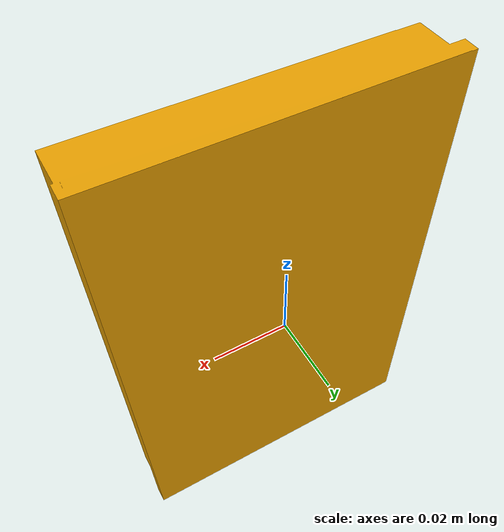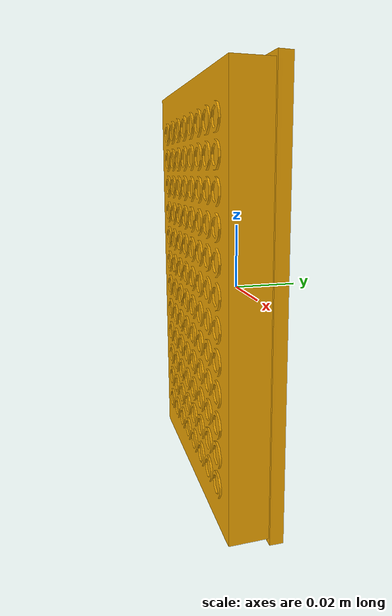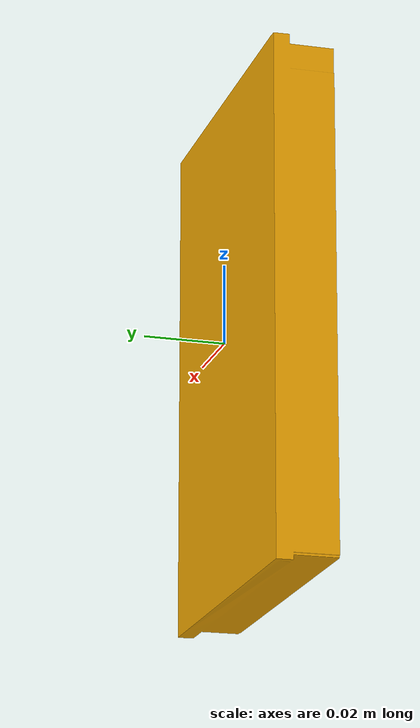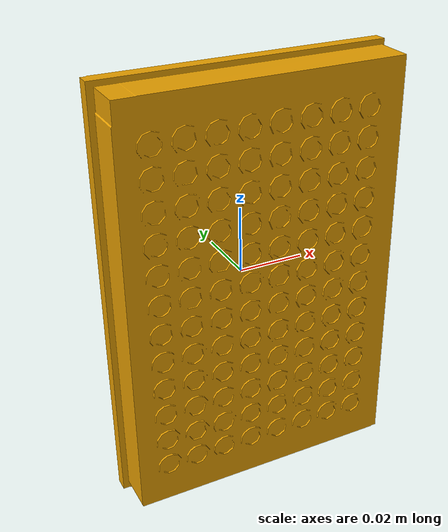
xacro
<?xml version="1.0" ?>
<robot xmlns:xacro="http://www.ros.org/wiki/xacro" name="tecan_nested_tip_rack">
    <link name='plate_link'>
      <visual name='visual'>
        <geometry>
          <mesh filename="meshes/plate.stl"/>
        </geometry>
        <material name="clay" />
      </visual>
    </link>
</robot>
